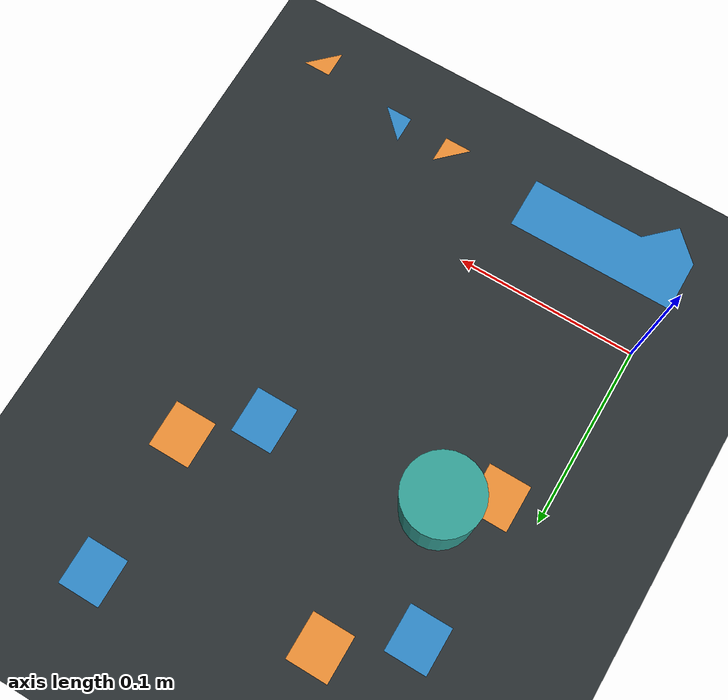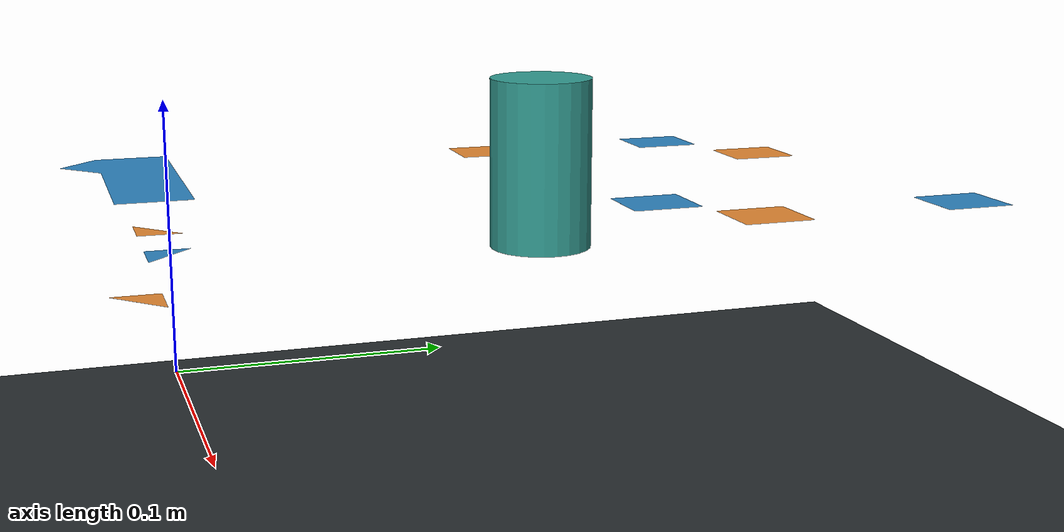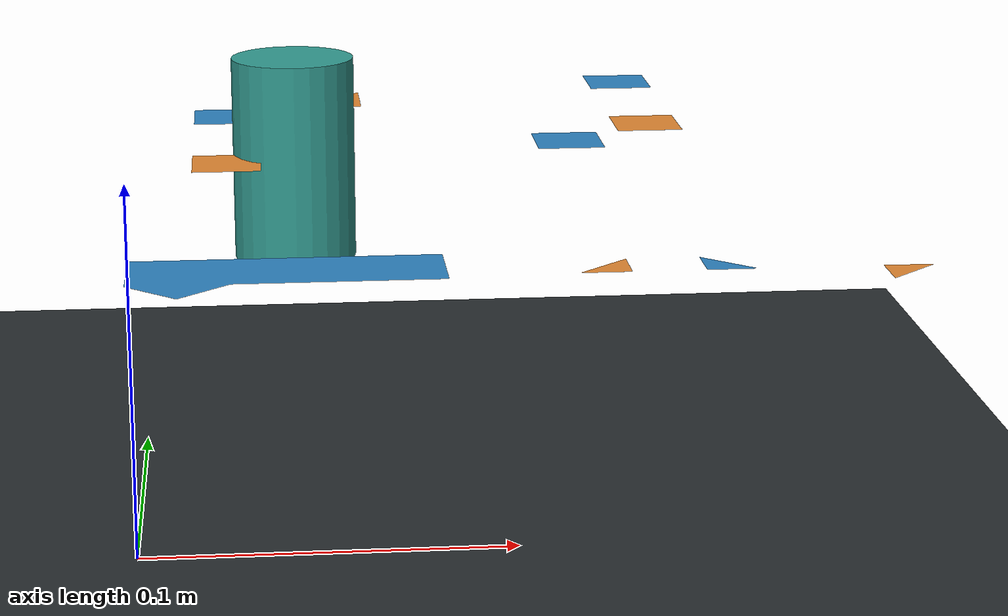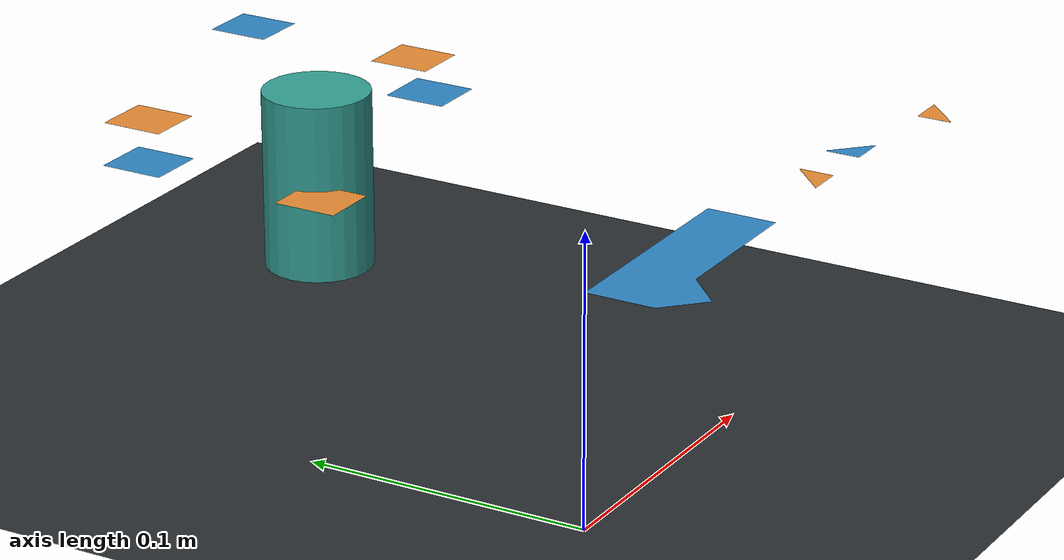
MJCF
<?xml version="1.0"?>
<mujoco model="three_finger_gripper_b_sdas">
  <compiler angle="radian" meshdir="" autolimits="true"/>
  <option timestep="0.002000000" integrator="RK4" gravity="0.0 0.0 0.0"/>
  <visual>
    <global offwidth="1280" offheight="900"/>
    <quality offsamples="8" shadowsize="4096"/>
    <headlight ambient="0.24 0.24 0.26" diffuse="0.65 0.65 0.62" specular="0.25 0.25 0.25"/>
    <rgba haze="0.86 0.88 0.90 1"/>
  </visual>
  <asset>
    <material name="base_mat" rgba="0.16 0.18 0.19 1"/>
    <material name="hand_mat" rgba="0.18 0.52 0.76 1" specular="0.25" shininess="0.25"/>
    <material name="hand_alt" rgba="0.90 0.54 0.20 1" specular="0.25" shininess="0.25"/>
    <material name="mat_adaptive_cylinder" rgba="0.2 0.62 0.58 1" specular="0.25" shininess="0.25"/>
    <mesh name="mesh_face_0" file="E:/SGLab/cable-driven/synergy_hand_sim/models/three_finger_gripper_b/meshes/face_0.stl" scale="0.001 0.001 0.001"/>
    <mesh name="mesh_face_1" file="E:/SGLab/cable-driven/synergy_hand_sim/models/three_finger_gripper_b/meshes/face_1.stl" scale="0.001 0.001 0.001"/>
    <mesh name="mesh_face_2" file="E:/SGLab/cable-driven/synergy_hand_sim/models/three_finger_gripper_b/meshes/face_2.stl" scale="0.001 0.001 0.001"/>
    <mesh name="mesh_face_3" file="E:/SGLab/cable-driven/synergy_hand_sim/models/three_finger_gripper_b/meshes/face_3.stl" scale="0.001 0.001 0.001"/>
    <mesh name="mesh_face_4" file="E:/SGLab/cable-driven/synergy_hand_sim/models/three_finger_gripper_b/meshes/face_4.stl" scale="0.001 0.001 0.001"/>
    <mesh name="mesh_face_5" file="E:/SGLab/cable-driven/synergy_hand_sim/models/three_finger_gripper_b/meshes/face_5.stl" scale="0.001 0.001 0.001"/>
    <mesh name="mesh_face_6" file="E:/SGLab/cable-driven/synergy_hand_sim/models/three_finger_gripper_b/meshes/face_6.stl" scale="0.001 0.001 0.001"/>
    <mesh name="mesh_face_7" file="E:/SGLab/cable-driven/synergy_hand_sim/models/three_finger_gripper_b/meshes/face_7.stl" scale="0.001 0.001 0.001"/>
    <mesh name="mesh_face_8" file="E:/SGLab/cable-driven/synergy_hand_sim/models/three_finger_gripper_b/meshes/face_8.stl" scale="0.001 0.001 0.001"/>
    <mesh name="mesh_face_9" file="E:/SGLab/cable-driven/synergy_hand_sim/models/three_finger_gripper_b/meshes/face_9.stl" scale="0.001 0.001 0.001"/>
  </asset>
  <worldbody>
    <light name="key" directional="true" pos="1.8 -2.4 3.0" dir="-1.8 2.4 -3.0" diffuse="0.78 0.75 0.68"/>
    <light name="fill" directional="true" pos="-2.0 1.5 2.0" dir="2.0 -1.5 -2.0" diffuse="0.35 0.42 0.50"/>
    <geom name="floor" type="plane" size="1.4 1.4 0.02" pos="0 0 -0.015" material="base_mat" contype="4" conaffinity="2" friction="1.1 0.01 0.0001" condim="3" margin="0.0002"/>
    <body name="face_0" pos="0 0 0.080000000">
      <inertial pos="0 0 0" mass="0.030000000" diaginertia="0.000080000 0.000080000 0.000080000"/>
      <geom name="geom_face_0" type="mesh" mesh="mesh_face_0" material="hand_mat" contype="1" conaffinity="2" friction="1.1 0.01 0.0001" condim="3" margin="0.0002"/>
      <body name="face_1" pos="0.015000000 0.100000000 0.000000000">
        <inertial pos="0 0 0" mass="0.030000000" diaginertia="0.000080000 0.000080000 0.000080000"/>
        <joint name="joint_0" type="hinge" pos="0 0 0" axis="1.000000000 0.000000000 0.000000000" range="-1.57 1.57" limited="true" stiffness="0" armature="0.000080000"/>
        <geom name="geom_face_1" type="mesh" mesh="mesh_face_1" material="hand_alt" contype="1" conaffinity="2" friction="1.1 0.01 0.0001" condim="3" margin="0.0002"/>
        <body name="face_2" pos="0.000000000 0.045000000 0.000000000">
          <inertial pos="0 0 0" mass="0.030000000" diaginertia="0.000080000 0.000080000 0.000080000"/>
          <joint name="joint_3" type="hinge" pos="0 0 0" axis="1.000000000 0.000000000 0.000000000" range="-1.57 1.57" limited="true" stiffness="0" armature="0.000080000"/>
          <geom name="geom_face_2" type="mesh" mesh="mesh_face_2" material="hand_mat" contype="1" conaffinity="2" friction="1.1 0.01 0.0001" condim="3" margin="0.0002"/>
          <body name="face_3" pos="0.000000000 0.045000000 0.000000000">
            <inertial pos="0 0 0" mass="0.030000000" diaginertia="0.000080000 0.000080000 0.000080000"/>
            <joint name="joint_4" type="hinge" pos="0 0 0" axis="1.000000000 0.000000000 0.000000000" range="-1.57 1.57" limited="true" stiffness="0" armature="0.000080000"/>
            <geom name="geom_face_3" type="mesh" mesh="mesh_face_3" material="hand_alt" contype="1" conaffinity="2" friction="1.1 0.01 0.0001" condim="3" margin="0.0002"/>
          </body>
        </body>
      </body>
      <body name="face_4" pos="0.085000000 0.100000000 0.000000000">
        <inertial pos="0 0 0" mass="0.030000000" diaginertia="0.000080000 0.000080000 0.000080000"/>
        <joint name="joint_1" type="hinge" pos="0 0 0" axis="1.000000000 0.000000000 0.000000000" range="-1.57 1.57" limited="true" stiffness="0" armature="0.000080000"/>
        <geom name="geom_face_4" type="mesh" mesh="mesh_face_4" material="hand_mat" contype="1" conaffinity="2" friction="1.1 0.01 0.0001" condim="3" margin="0.0002"/>
        <body name="face_5" pos="0.000000000 0.045000000 0.000000000">
          <inertial pos="0 0 0" mass="0.030000000" diaginertia="0.000080000 0.000080000 0.000080000"/>
          <joint name="joint_5" type="hinge" pos="0 0 0" axis="1.000000000 0.000000000 0.000000000" range="-1.57 1.57" limited="true" stiffness="0" armature="0.000080000"/>
          <geom name="geom_face_5" type="mesh" mesh="mesh_face_5" material="hand_alt" contype="1" conaffinity="2" friction="1.1 0.01 0.0001" condim="3" margin="0.0002"/>
          <body name="face_6" pos="0.000000000 0.045000000 0.000000000">
            <inertial pos="0 0 0" mass="0.030000000" diaginertia="0.000080000 0.000080000 0.000080000"/>
            <joint name="joint_6" type="hinge" pos="0 0 0" axis="1.000000000 0.000000000 0.000000000" range="-1.57 1.57" limited="true" stiffness="0" armature="0.000080000"/>
            <geom name="geom_face_6" type="mesh" mesh="mesh_face_6" material="hand_mat" contype="1" conaffinity="2" friction="1.1 0.01 0.0001" condim="3" margin="0.0002"/>
          </body>
        </body>
      </body>
      <body name="face_7" pos="0.100000000 0.015000000 0.000000000">
        <inertial pos="0 0 0" mass="0.030000000" diaginertia="0.000080000 0.000080000 0.000080000"/>
        <joint name="joint_2" type="hinge" pos="0 0 0" axis="0.000000000 -1.000000000 0.000000000" range="-1.57 1.57" limited="true" stiffness="0" armature="0.000080000"/>
        <geom name="geom_face_7" type="mesh" mesh="mesh_face_7" material="hand_alt" contype="1" conaffinity="2" friction="1.1 0.01 0.0001" condim="3" margin="0.0002"/>
        <body name="face_8" pos="0.045000000 0.000000000 0.000000000">
          <inertial pos="0 0 0" mass="0.030000000" diaginertia="0.000080000 0.000080000 0.000080000"/>
          <joint name="joint_7" type="hinge" pos="0 0 0" axis="-0.000000000 -1.000000000 0.000000000" range="-1.57 1.57" limited="true" stiffness="0" armature="0.000080000"/>
          <geom name="geom_face_8" type="mesh" mesh="mesh_face_8" material="hand_mat" contype="1" conaffinity="2" friction="1.1 0.01 0.0001" condim="3" margin="0.0002"/>
          <body name="face_9" pos="0.045000000 0.000000000 0.000000000">
            <inertial pos="0 0 0" mass="0.030000000" diaginertia="0.000080000 0.000080000 0.000080000"/>
            <joint name="joint_8" type="hinge" pos="0 0 0" axis="-0.000000000 -1.000000000 0.000000000" range="-1.57 1.57" limited="true" stiffness="0" armature="0.000080000"/>
            <geom name="geom_face_9" type="mesh" mesh="mesh_face_9" material="hand_alt" contype="1" conaffinity="2" friction="1.1 0.01 0.0001" condim="3" margin="0.0002"/>
          </body>
        </body>
      </body>
    </body>
    <body name="adaptive_cylinder" pos="0.045 0.125 0.0785" quat="1 0 0 0">
      <freejoint name="adaptive_cylinder_free"/>
      <inertial pos="0 0 0" mass="0.5" diaginertia="5e-05 5e-05 5e-05"/>
      <geom name="geom_adaptive_cylinder" type="cylinder" size="0.018 0.03" material="mat_adaptive_cylinder" contype="2" conaffinity="5" friction="1.1 0.01 0.0001" condim="3" margin="0.0002"/>
    </body>
  </worldbody>
</mujoco>
